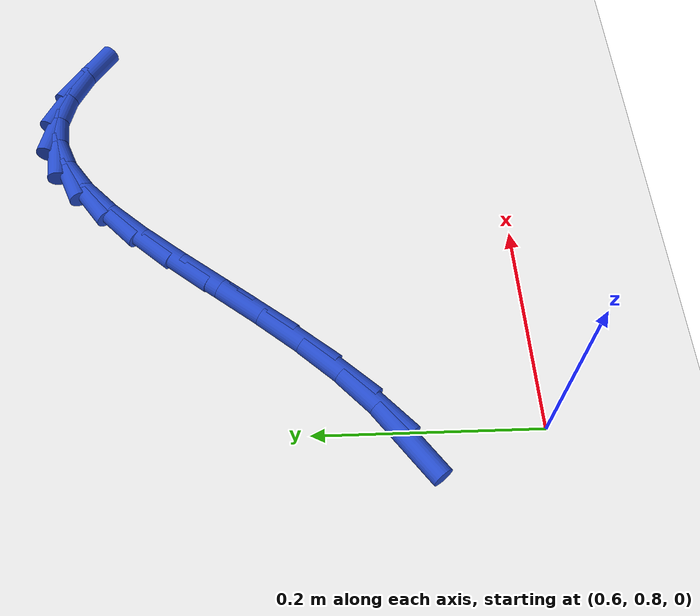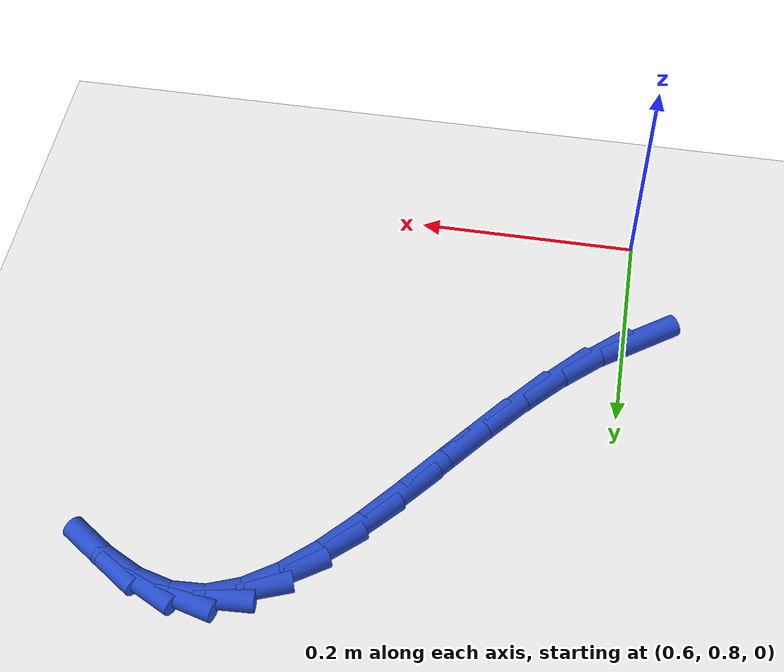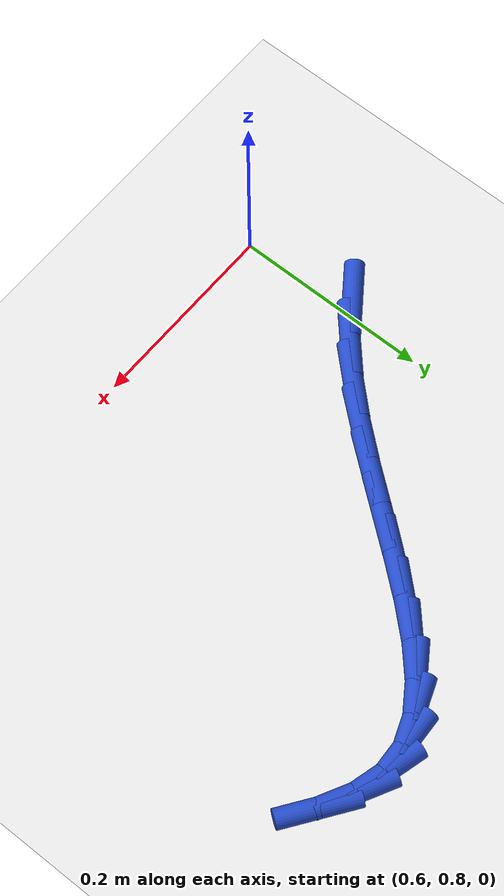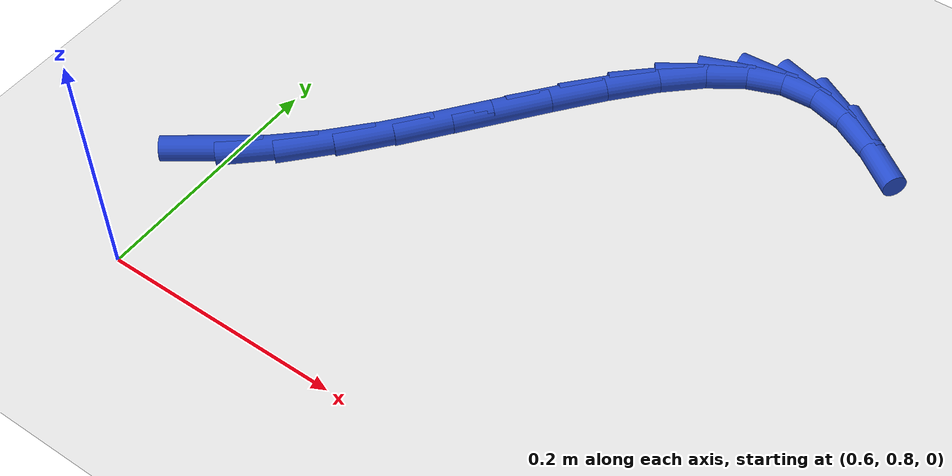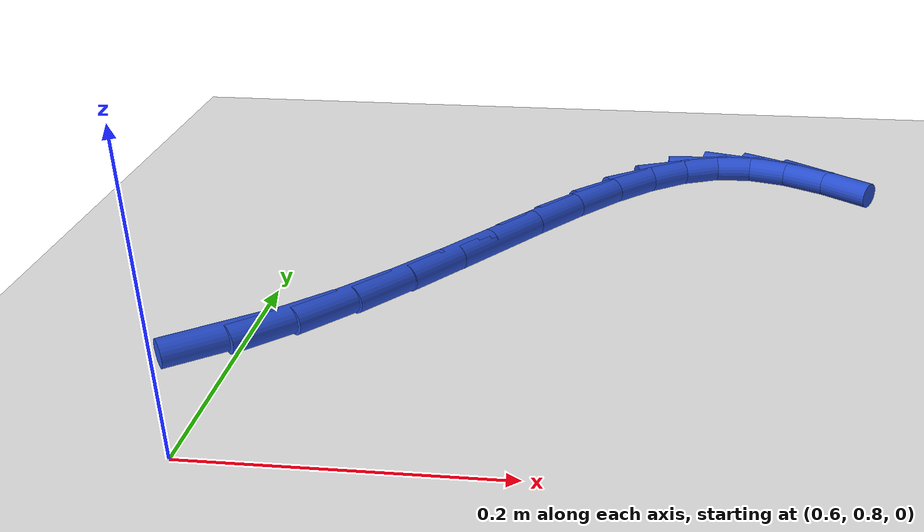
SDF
<sdf version="1.6">
 <world name="default">
  <model name="ground_plane">
   <static>1</static>
   <link name="link">
    <collision name="collision">
     <geometry><plane><normal>0 0 1</normal><size>100 100</size></plane></geometry>
     <surface><friction><ode><mu>100</mu><mu2>50</mu2></ode></friction></surface>
    </collision>
    <visual name="visual">
     <cast_shadows>0</cast_shadows>
     <geometry><plane><normal>0 0 1</normal><size>100 100</size></plane></geometry>
     <material>
      <script><uri>file://media/materials/scripts/gazebo.material</uri><name>Gazebo/WhiteGlow</name></script>
     </material>
    </visual>
   </link>
  </model>
  <model name="line">
   <link name="link_29">
    <pose>0.5886570686950691 0.9172164187824331 0.01 0 1.57 0.6248913458901066</pose>
    <collision name="collision">
     <geometry><cylinder><radius>0.01</radius><length>0.08</length></cylinder></geometry>
    </collision>
    <visual name="visual">
     <material>
      <script><name>Gazebo/Blue</name><uri>file://media/materials/scripts/gazebo.material</uri></script>
     </material>
     <geometry><cylinder><radius>0.01</radius><length>0.08</length></cylinder></geometry>
    </visual>
   </link>
   <link name="link_30">
    <pose>0.6231937090115269 0.9421283619636506 0.01 0 1.57 0.7428697556811471</pose>
    <collision name="collision">
     <geometry><cylinder><radius>0.01</radius><length>0.08</length></cylinder></geometry>
    </collision>
    <visual name="visual">
     <material>
      <script><name>Gazebo/Blue</name><uri>file://media/materials/scripts/gazebo.material</uri></script>
     </material>
     <geometry><cylinder><radius>0.01</radius><length>0.08</length></cylinder></geometry>
    </visual>
   </link>
   <link name="link_31">
    <pose>0.6558779607834962 0.9721444589460397 0.01 0 1.57 0.8250778165060558</pose>
    <collision name="collision">
     <geometry><cylinder><radius>0.01</radius><length>0.08</length></cylinder></geometry>
    </collision>
    <visual name="visual">
     <material>
      <script><name>Gazebo/Blue</name><uri>file://media/materials/scripts/gazebo.material</uri></script>
     </material>
     <geometry><cylinder><radius>0.01</radius><length>0.08</length></cylinder></geometry>
    </visual>
   </link>
   <link name="link_32">
    <pose>0.6869827696152916 1.0058211241099375 0.01 0 1.57 0.8779189661779987</pose>
    <collision name="collision">
     <geometry><cylinder><radius>0.01</radius><length>0.08</length></cylinder></geometry>
    </collision>
    <visual name="visual">
     <material>
      <script><name>Gazebo/Blue</name><uri>file://media/materials/scripts/gazebo.material</uri></script>
     </material>
     <geometry><cylinder><radius>0.01</radius><length>0.08</length></cylinder></geometry>
    </visual>
   </link>
   <link name="link_33">
    <pose>0.7167810967226008 1.041714722915088 0.01 0 1.57 0.9055846487890683</pose>
    <collision name="collision">
     <geometry><cylinder><radius>0.01</radius><length>0.08</length></cylinder></geometry>
    </collision>
    <visual name="visual">
     <material>
      <script><name>Gazebo/Blue</name><uri>file://media/materials/scripts/gazebo.material</uri></script>
     </material>
     <geometry><cylinder><radius>0.01</radius><length>0.08</length></cylinder></geometry>
    </visual>
   </link>
   <link name="link_34">
    <pose>0.7455459033211121 1.0783816208212362 0.01 0 1.57 0.9096333721276356</pose>
    <collision name="collision">
     <geometry><cylinder><radius>0.01</radius><length>0.08</length></cylinder></geometry>
    </collision>
    <visual name="visual">
     <material>
      <script><name>Gazebo/Blue</name><uri>file://media/materials/scripts/gazebo.material</uri></script>
     </material>
     <geometry><cylinder><radius>0.01</radius><length>0.08</length></cylinder></geometry>
    </visual>
   </link>
   <link name="link_35">
    <pose>0.7735501506265139 1.1143781832881277 0.01 0 1.57 0.8887101630606242</pose>
    <collision name="collision">
     <geometry><cylinder><radius>0.01</radius><length>0.08</length></cylinder></geometry>
    </collision>
    <visual name="visual">
     <material>
      <script><name>Gazebo/Blue</name><uri>file://media/materials/scripts/gazebo.material</uri></script>
     </material>
     <geometry><cylinder><radius>0.01</radius><length>0.08</length></cylinder></geometry>
    </visual>
   </link>
   <link name="link_36">
    <pose>0.8010667998544939 1.1482607757755066 0.01 0 1.57 0.8378077504988122</pose>
    <collision name="collision">
     <geometry><cylinder><radius>0.01</radius><length>0.08</length></cylinder></geometry>
    </collision>
    <visual name="visual">
     <material>
      <script><name>Gazebo/Blue</name><uri>file://media/materials/scripts/gazebo.material</uri></script>
     </material>
     <geometry><cylinder><radius>0.01</radius><length>0.08</length></cylinder></geometry>
    </visual>
   </link>
   <link name="link_37">
    <pose>0.828368812220741 1.1785857637431185 0.01 0 1.57 0.7467607978600744</pose>
    <collision name="collision">
     <geometry><cylinder><radius>0.01</radius><length>0.08</length></cylinder></geometry>
    </collision>
    <visual name="visual">
     <material>
      <script><name>Gazebo/Blue</name><uri>file://media/materials/scripts/gazebo.material</uri></script>
     </material>
     <geometry><cylinder><radius>0.01</radius><length>0.08</length></cylinder></geometry>
    </visual>
   </link>
   <link name="link_38">
    <pose>0.8557291489409421 1.2039095126507078 0.01 0 1.57 0.5983751041033184</pose>
    <collision name="collision">
     <geometry><cylinder><radius>0.01</radius><length>0.08</length></cylinder></geometry>
    </collision>
    <visual name="visual">
     <material>
      <script><name>Gazebo/Blue</name><uri>file://media/materials/scripts/gazebo.material</uri></script>
     </material>
     <geometry><cylinder><radius>0.01</radius><length>0.08</length></cylinder></geometry>
    </visual>
   </link>
   <link name="link_39">
    <pose>0.8834207712307868 1.2227883879580201 0.01 0 1.57 0.3704742805654535</pose>
    <collision name="collision">
     <geometry><cylinder><radius>0.01</radius><length>0.08</length></cylinder></geometry>
    </collision>
    <visual name="visual">
     <material>
      <script><name>Gazebo/Blue</name><uri>file://media/materials/scripts/gazebo.material</uri></script>
     </material>
     <geometry><cylinder><radius>0.01</radius><length>0.08</length></cylinder></geometry>
    </visual>
   </link>
   <link name="link_40">
    <pose>0.9117166403059624 1.2337787551247994 0.01 0 1.57 0.05695463170508301</pose>
    <collision name="collision">
     <geometry><cylinder><radius>0.01</radius><length>0.08</length></cylinder></geometry>
    </collision>
    <visual name="visual">
     <material>
      <script><name>Gazebo/Blue</name><uri>file://media/materials/scripts/gazebo.material</uri></script>
     </material>
     <geometry><cylinder><radius>0.01</radius><length>0.08</length></cylinder></geometry>
    </visual>
   </link>
   <link name="link_41">
    <pose>0.9408891647191737 1.2354420643952602 0.01 0 1.57 -0.2631267639490218</pose>
    <collision name="collision">
     <geometry><cylinder><radius>0.01</radius><length>0.08</length></cylinder></geometry>
    </collision>
    <visual name="visual">
     <material>
      <script><name>Gazebo/Blue</name><uri>file://media/materials/scripts/gazebo.material</uri></script>
     </material>
     <geometry><cylinder><radius>0.01</radius><length>0.08</length></cylinder></geometry>
    </visual>
   </link>
   <link name="link_42">
    <pose>0.9711061191557814 1.2273024515553956 0.01 0 1.57 -0.4820320225163663</pose>
    <collision name="collision">
     <geometry><cylinder><radius>0.01</radius><length>0.08</length></cylinder></geometry>
    </collision>
    <visual name="visual">
     <material>
      <script><name>Gazebo/Blue</name><uri>file://media/materials/scripts/gazebo.material</uri></script>
     </material>
     <geometry><cylinder><radius>0.01</radius><length>0.08</length></cylinder></geometry>
    </visual>
   </link>
   <link name="link_43">
    <pose>1.0023076990749809 1.2109778986400173 0.01 0 1.57 -0.6138314572361705</pose>
    <collision name="collision">
     <geometry><cylinder><radius>0.01</radius><length>0.08</length></cylinder></geometry>
    </collision>
    <visual name="visual">
     <material>
      <script><name>Gazebo/Blue</name><uri>file://media/materials/scripts/gazebo.material</uri></script>
     </material>
     <geometry><cylinder><radius>0.01</radius><length>0.08</length></cylinder></geometry>
    </visual>
   </link>
  </model>
 </world>
</sdf>
